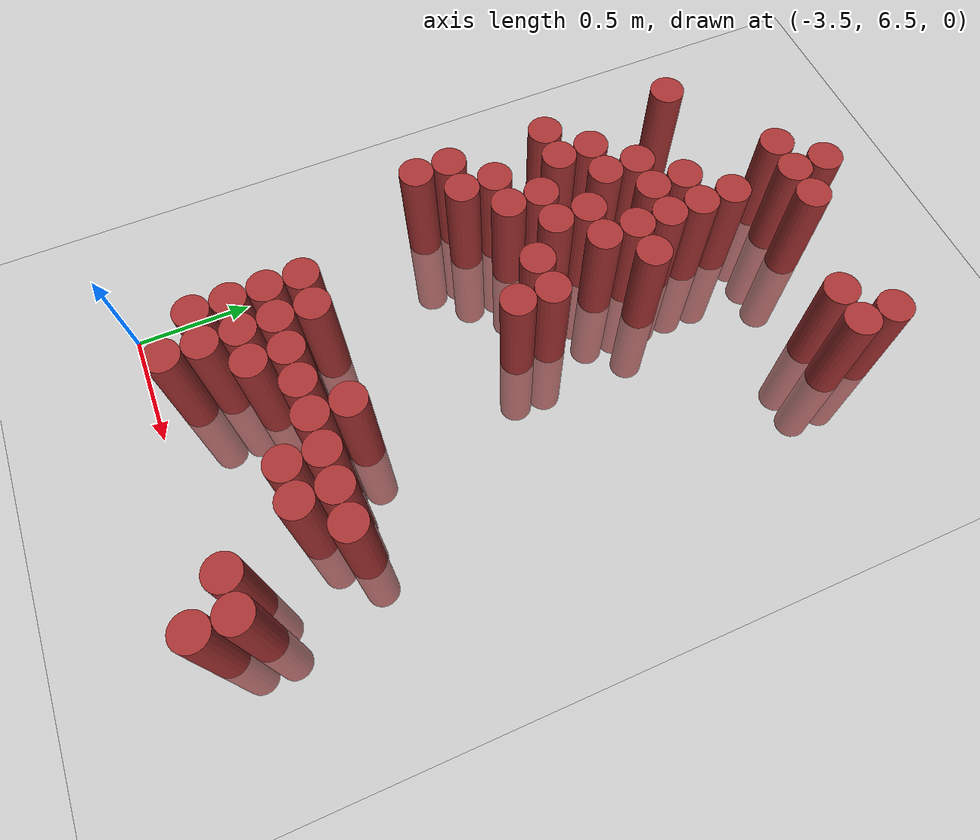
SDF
<sdf version="1.6">
 <world name="default">
  <model name="ground_plane">
   <static>1</static>
   <link name="link">
    <collision name="collision">
     <geometry><plane><normal>0 0 1</normal><size>100 100</size></plane></geometry>
     <surface><friction><ode><mu>100</mu><mu2>50</mu2></ode></friction></surface>
    </collision>
    <visual name="visual">
     <cast_shadows>0</cast_shadows>
     <geometry><plane><normal>0 0 1</normal><size>100 100</size></plane></geometry>
     <material>
      <script><uri>file://media/materials/scripts/gazebo.material</uri><name>Gazebo/Grey</name></script>
     </material>
    </visual>
   </link>
  </model>
  <model name="unit_cylinder_172">
   <static>1</static>
   <pose>-3.525000 7.875000 0.000000 0.000000 0.000000 0.000000</pose>
   <link name="link">
    <inertial>
     <mass>1</mass>
     <inertia><ixx>0.145833</ixx><ixy>0</ixy><ixz>0</ixz><iyy>0.145833</iyy><iyz>0</iyz><izz>0.125</izz></inertia>
    </inertial>
    <collision name="collision">
     <geometry><cylinder><radius>0.075000</radius><length>1</length></cylinder></geometry>
    </collision>
    <visual name="visual">
     <geometry><cylinder><radius>0.075000</radius><length>1</length></cylinder></geometry>
     <material>
      <ambient>0.648000 0.192000 0.192000 1</ambient>
      <diffuse>0.648000 0.192000 0.192000 1</diffuse>
     </material>
     <material>
      <script><name>Gazebo/Grey</name><uri>file://media/materials/scripts/gazebo.material</uri></script>
     </material>
    </visual>
   </link>
  </model>
  <model name="unit_cylinder_173">
   <static>1</static>
   <pose>-3.525000 8.025000 0.000000 0.000000 0.000000 0.000000</pose>
   <link name="link">
    <inertial>
     <mass>1</mass>
     <inertia><ixx>0.145833</ixx><ixy>0</ixy><ixz>0</ixz><iyy>0.145833</iyy><iyz>0</iyz><izz>0.125</izz></inertia>
    </inertial>
    <collision name="collision">
     <geometry><cylinder><radius>0.075000</radius><length>1</length></cylinder></geometry>
    </collision>
    <visual name="visual">
     <geometry><cylinder><radius>0.075000</radius><length>1</length></cylinder></geometry>
     <material>
      <ambient>0.648000 0.192000 0.192000 1</ambient>
      <diffuse>0.648000 0.192000 0.192000 1</diffuse>
     </material>
     <material>
      <script><name>Gazebo/Grey</name><uri>file://media/materials/scripts/gazebo.material</uri></script>
     </material>
    </visual>
   </link>
  </model>
  <model name="unit_cylinder_174">
   <static>1</static>
   <pose>-3.525000 8.475000 0.000000 0.000000 0.000000 0.000000</pose>
   <link name="link">
    <inertial>
     <mass>1</mass>
     <inertia><ixx>0.145833</ixx><ixy>0</ixy><ixz>0</ixz><iyy>0.145833</iyy><iyz>0</iyz><izz>0.125</izz></inertia>
    </inertial>
    <collision name="collision">
     <geometry><cylinder><radius>0.075000</radius><length>1</length></cylinder></geometry>
    </collision>
    <visual name="visual">
     <geometry><cylinder><radius>0.075000</radius><length>1</length></cylinder></geometry>
     <material>
      <ambient>0.648000 0.192000 0.192000 1</ambient>
      <diffuse>0.648000 0.192000 0.192000 1</diffuse>
     </material>
     <material>
      <script><name>Gazebo/Grey</name><uri>file://media/materials/scripts/gazebo.material</uri></script>
     </material>
    </visual>
   </link>
  </model>
  <model name="unit_cylinder_175">
   <static>1</static>
   <pose>-3.525000 9.075000 0.000000 0.000000 0.000000 0.000000</pose>
   <link name="link">
    <inertial>
     <mass>1</mass>
     <inertia><ixx>0.145833</ixx><ixy>0</ixy><ixz>0</ixz><iyy>0.145833</iyy><iyz>0</iyz><izz>0.125</izz></inertia>
    </inertial>
    <collision name="collision">
     <geometry><cylinder><radius>0.075000</radius><length>1</length></cylinder></geometry>
    </collision>
    <visual name="visual">
     <geometry><cylinder><radius>0.075000</radius><length>1</length></cylinder></geometry>
     <material>
      <ambient>0.648000 0.192000 0.192000 1</ambient>
      <diffuse>0.648000 0.192000 0.192000 1</diffuse>
     </material>
     <material>
      <script><name>Gazebo/Grey</name><uri>file://media/materials/scripts/gazebo.material</uri></script>
     </material>
    </visual>
   </link>
  </model>
  <model name="unit_cylinder_179">
   <static>1</static>
   <pose>-3.375000 8.025000 0.000000 0.000000 0.000000 0.000000</pose>
   <link name="link">
    <inertial>
     <mass>1</mass>
     <inertia><ixx>0.145833</ixx><ixy>0</ixy><ixz>0</ixz><iyy>0.145833</iyy><iyz>0</iyz><izz>0.125</izz></inertia>
    </inertial>
    <collision name="collision">
     <geometry><cylinder><radius>0.075000</radius><length>1</length></cylinder></geometry>
    </collision>
    <visual name="visual">
     <geometry><cylinder><radius>0.075000</radius><length>1</length></cylinder></geometry>
     <material>
      <ambient>0.648000 0.192000 0.192000 1</ambient>
      <diffuse>0.648000 0.192000 0.192000 1</diffuse>
     </material>
     <material>
      <script><name>Gazebo/Grey</name><uri>file://media/materials/scripts/gazebo.material</uri></script>
     </material>
    </visual>
   </link>
  </model>
  <model name="unit_cylinder_180">
   <static>1</static>
   <pose>-3.375000 8.175000 0.000000 0.000000 0.000000 0.000000</pose>
   <link name="link">
    <inertial>
     <mass>1</mass>
     <inertia><ixx>0.145833</ixx><ixy>0</ixy><ixz>0</ixz><iyy>0.145833</iyy><iyz>0</iyz><izz>0.125</izz></inertia>
    </inertial>
    <collision name="collision">
     <geometry><cylinder><radius>0.075000</radius><length>1</length></cylinder></geometry>
    </collision>
    <visual name="visual">
     <geometry><cylinder><radius>0.075000</radius><length>1</length></cylinder></geometry>
     <material>
      <ambient>0.648000 0.192000 0.192000 1</ambient>
      <diffuse>0.648000 0.192000 0.192000 1</diffuse>
     </material>
     <material>
      <script><name>Gazebo/Grey</name><uri>file://media/materials/scripts/gazebo.material</uri></script>
     </material>
    </visual>
   </link>
  </model>
  <model name="unit_cylinder_181">
   <static>1</static>
   <pose>-3.375000 8.475000 0.000000 0.000000 0.000000 0.000000</pose>
   <link name="link">
    <inertial>
     <mass>1</mass>
     <inertia><ixx>0.145833</ixx><ixy>0</ixy><ixz>0</ixz><iyy>0.145833</iyy><iyz>0</iyz><izz>0.125</izz></inertia>
    </inertial>
    <collision name="collision">
     <geometry><cylinder><radius>0.075000</radius><length>1</length></cylinder></geometry>
    </collision>
    <visual name="visual">
     <geometry><cylinder><radius>0.075000</radius><length>1</length></cylinder></geometry>
     <material>
      <ambient>0.648000 0.192000 0.192000 1</ambient>
      <diffuse>0.648000 0.192000 0.192000 1</diffuse>
     </material>
     <material>
      <script><name>Gazebo/Grey</name><uri>file://media/materials/scripts/gazebo.material</uri></script>
     </material>
    </visual>
   </link>
  </model>
  <model name="unit_cylinder_182">
   <static>1</static>
   <pose>-3.375000 8.625000 0.000000 0.000000 0.000000 0.000000</pose>
   <link name="link">
    <inertial>
     <mass>1</mass>
     <inertia><ixx>0.145833</ixx><ixy>0</ixy><ixz>0</ixz><iyy>0.145833</iyy><iyz>0</iyz><izz>0.125</izz></inertia>
    </inertial>
    <collision name="collision">
     <geometry><cylinder><radius>0.075000</radius><length>1</length></cylinder></geometry>
    </collision>
    <visual name="visual">
     <geometry><cylinder><radius>0.075000</radius><length>1</length></cylinder></geometry>
     <material>
      <ambient>0.648000 0.192000 0.192000 1</ambient>
      <diffuse>0.648000 0.192000 0.192000 1</diffuse>
     </material>
     <material>
      <script><name>Gazebo/Grey</name><uri>file://media/materials/scripts/gazebo.material</uri></script>
     </material>
    </visual>
   </link>
  </model>
  <model name="unit_cylinder_186">
   <static>1</static>
   <pose>-3.225000 6.825000 0.000000 0.000000 0.000000 0.000000</pose>
   <link name="link">
    <inertial>
     <mass>1</mass>
     <inertia><ixx>0.145833</ixx><ixy>0</ixy><ixz>0</ixz><iyy>0.145833</iyy><iyz>0</iyz><izz>0.125</izz></inertia>
    </inertial>
    <collision name="collision">
     <geometry><cylinder><radius>0.075000</radius><length>1</length></cylinder></geometry>
    </collision>
    <visual name="visual">
     <geometry><cylinder><radius>0.075000</radius><length>1</length></cylinder></geometry>
     <material>
      <ambient>0.648000 0.192000 0.192000 1</ambient>
      <diffuse>0.648000 0.192000 0.192000 1</diffuse>
     </material>
     <material>
      <script><name>Gazebo/Grey</name><uri>file://media/materials/scripts/gazebo.material</uri></script>
     </material>
    </visual>
   </link>
  </model>
  <model name="unit_cylinder_187">
   <static>1</static>
   <pose>-3.225000 6.975000 0.000000 0.000000 0.000000 0.000000</pose>
   <link name="link">
    <inertial>
     <mass>1</mass>
     <inertia><ixx>0.145833</ixx><ixy>0</ixy><ixz>0</ixz><iyy>0.145833</iyy><iyz>0</iyz><izz>0.125</izz></inertia>
    </inertial>
    <collision name="collision">
     <geometry><cylinder><radius>0.075000</radius><length>1</length></cylinder></geometry>
    </collision>
    <visual name="visual">
     <geometry><cylinder><radius>0.075000</radius><length>1</length></cylinder></geometry>
     <material>
      <ambient>0.648000 0.192000 0.192000 1</ambient>
      <diffuse>0.648000 0.192000 0.192000 1</diffuse>
     </material>
     <material>
      <script><name>Gazebo/Grey</name><uri>file://media/materials/scripts/gazebo.material</uri></script>
     </material>
    </visual>
   </link>
  </model>
  <model name="unit_cylinder_188">
   <static>1</static>
   <pose>-3.225000 7.125000 0.000000 0.000000 0.000000 0.000000</pose>
   <link name="link">
    <inertial>
     <mass>1</mass>
     <inertia><ixx>0.145833</ixx><ixy>0</ixy><ixz>0</ixz><iyy>0.145833</iyy><iyz>0</iyz><izz>0.125</izz></inertia>
    </inertial>
    <collision name="collision">
     <geometry><cylinder><radius>0.075000</radius><length>1</length></cylinder></geometry>
    </collision>
    <visual name="visual">
     <geometry><cylinder><radius>0.075000</radius><length>1</length></cylinder></geometry>
     <material>
      <ambient>0.648000 0.192000 0.192000 1</ambient>
      <diffuse>0.648000 0.192000 0.192000 1</diffuse>
     </material>
     <material>
      <script><name>Gazebo/Grey</name><uri>file://media/materials/scripts/gazebo.material</uri></script>
     </material>
    </visual>
   </link>
  </model>
  <model name="unit_cylinder_189">
   <static>1</static>
   <pose>-3.225000 7.275000 0.000000 0.000000 0.000000 0.000000</pose>
   <link name="link">
    <inertial>
     <mass>1</mass>
     <inertia><ixx>0.145833</ixx><ixy>0</ixy><ixz>0</ixz><iyy>0.145833</iyy><iyz>0</iyz><izz>0.125</izz></inertia>
    </inertial>
    <collision name="collision">
     <geometry><cylinder><radius>0.075000</radius><length>1</length></cylinder></geometry>
    </collision>
    <visual name="visual">
     <geometry><cylinder><radius>0.075000</radius><length>1</length></cylinder></geometry>
     <material>
      <ambient>0.648000 0.192000 0.192000 1</ambient>
      <diffuse>0.648000 0.192000 0.192000 1</diffuse>
     </material>
     <material>
      <script><name>Gazebo/Grey</name><uri>file://media/materials/scripts/gazebo.material</uri></script>
     </material>
    </visual>
   </link>
  </model>
  <model name="unit_cylinder_190">
   <static>1</static>
   <pose>-3.225000 8.175000 0.000000 0.000000 0.000000 0.000000</pose>
   <link name="link">
    <inertial>
     <mass>1</mass>
     <inertia><ixx>0.145833</ixx><ixy>0</ixy><ixz>0</ixz><iyy>0.145833</iyy><iyz>0</iyz><izz>0.125</izz></inertia>
    </inertial>
    <collision name="collision">
     <geometry><cylinder><radius>0.075000</radius><length>1</length></cylinder></geometry>
    </collision>
    <visual name="visual">
     <geometry><cylinder><radius>0.075000</radius><length>1</length></cylinder></geometry>
     <material>
      <ambient>0.648000 0.192000 0.192000 1</ambient>
      <diffuse>0.648000 0.192000 0.192000 1</diffuse>
     </material>
     <material>
      <script><name>Gazebo/Grey</name><uri>file://media/materials/scripts/gazebo.material</uri></script>
     </material>
    </visual>
   </link>
  </model>
  <model name="unit_cylinder_191">
   <static>1</static>
   <pose>-3.225000 8.325000 0.000000 0.000000 0.000000 0.000000</pose>
   <link name="link">
    <inertial>
     <mass>1</mass>
     <inertia><ixx>0.145833</ixx><ixy>0</ixy><ixz>0</ixz><iyy>0.145833</iyy><iyz>0</iyz><izz>0.125</izz></inertia>
    </inertial>
    <collision name="collision">
     <geometry><cylinder><radius>0.075000</radius><length>1</length></cylinder></geometry>
    </collision>
    <visual name="visual">
     <geometry><cylinder><radius>0.075000</radius><length>1</length></cylinder></geometry>
     <material>
      <ambient>0.648000 0.192000 0.192000 1</ambient>
      <diffuse>0.648000 0.192000 0.192000 1</diffuse>
     </material>
     <material>
      <script><name>Gazebo/Grey</name><uri>file://media/materials/scripts/gazebo.material</uri></script>
     </material>
    </visual>
   </link>
  </model>
  <model name="unit_cylinder_192">
   <static>1</static>
   <pose>-3.225000 8.625000 0.000000 0.000000 0.000000 0.000000</pose>
   <link name="link">
    <inertial>
     <mass>1</mass>
     <inertia><ixx>0.145833</ixx><ixy>0</ixy><ixz>0</ixz><iyy>0.145833</iyy><iyz>0</iyz><izz>0.125</izz></inertia>
    </inertial>
    <collision name="collision">
     <geometry><cylinder><radius>0.075000</radius><length>1</length></cylinder></geometry>
    </collision>
    <visual name="visual">
     <geometry><cylinder><radius>0.075000</radius><length>1</length></cylinder></geometry>
     <material>
      <ambient>0.648000 0.192000 0.192000 1</ambient>
      <diffuse>0.648000 0.192000 0.192000 1</diffuse>
     </material>
     <material>
      <script><name>Gazebo/Grey</name><uri>file://media/materials/scripts/gazebo.material</uri></script>
     </material>
    </visual>
   </link>
  </model>
  <model name="unit_cylinder_193">
   <static>1</static>
   <pose>-3.225000 8.775000 0.000000 0.000000 0.000000 0.000000</pose>
   <link name="link">
    <inertial>
     <mass>1</mass>
     <inertia><ixx>0.145833</ixx><ixy>0</ixy><ixz>0</ixz><iyy>0.145833</iyy><iyz>0</iyz><izz>0.125</izz></inertia>
    </inertial>
    <collision name="collision">
     <geometry><cylinder><radius>0.075000</radius><length>1</length></cylinder></geometry>
    </collision>
    <visual name="visual">
     <geometry><cylinder><radius>0.075000</radius><length>1</length></cylinder></geometry>
     <material>
      <ambient>0.648000 0.192000 0.192000 1</ambient>
      <diffuse>0.648000 0.192000 0.192000 1</diffuse>
     </material>
     <material>
      <script><name>Gazebo/Grey</name><uri>file://media/materials/scripts/gazebo.material</uri></script>
     </material>
    </visual>
   </link>
  </model>
  <model name="unit_cylinder_198">
   <static>1</static>
   <pose>-3.075000 6.675000 0.000000 0.000000 0.000000 0.000000</pose>
   <link name="link">
    <inertial>
     <mass>1</mass>
     <inertia><ixx>0.145833</ixx><ixy>0</ixy><ixz>0</ixz><iyy>0.145833</iyy><iyz>0</iyz><izz>0.125</izz></inertia>
    </inertial>
    <collision name="collision">
     <geometry><cylinder><radius>0.075000</radius><length>1</length></cylinder></geometry>
    </collision>
    <visual name="visual">
     <geometry><cylinder><radius>0.075000</radius><length>1</length></cylinder></geometry>
     <material>
      <ambient>0.648000 0.192000 0.192000 1</ambient>
      <diffuse>0.648000 0.192000 0.192000 1</diffuse>
     </material>
     <material>
      <script><name>Gazebo/Grey</name><uri>file://media/materials/scripts/gazebo.material</uri></script>
     </material>
    </visual>
   </link>
  </model>
  <model name="unit_cylinder_199">
   <static>1</static>
   <pose>-3.075000 6.825000 0.000000 0.000000 0.000000 0.000000</pose>
   <link name="link">
    <inertial>
     <mass>1</mass>
     <inertia><ixx>0.145833</ixx><ixy>0</ixy><ixz>0</ixz><iyy>0.145833</iyy><iyz>0</iyz><izz>0.125</izz></inertia>
    </inertial>
    <collision name="collision">
     <geometry><cylinder><radius>0.075000</radius><length>1</length></cylinder></geometry>
    </collision>
    <visual name="visual">
     <geometry><cylinder><radius>0.075000</radius><length>1</length></cylinder></geometry>
     <material>
      <ambient>0.648000 0.192000 0.192000 1</ambient>
      <diffuse>0.648000 0.192000 0.192000 1</diffuse>
     </material>
     <material>
      <script><name>Gazebo/Grey</name><uri>file://media/materials/scripts/gazebo.material</uri></script>
     </material>
    </visual>
   </link>
  </model>
  <model name="unit_cylinder_200">
   <static>1</static>
   <pose>-3.075000 6.975000 0.000000 0.000000 0.000000 0.000000</pose>
   <link name="link">
    <inertial>
     <mass>1</mass>
     <inertia><ixx>0.145833</ixx><ixy>0</ixy><ixz>0</ixz><iyy>0.145833</iyy><iyz>0</iyz><izz>0.125</izz></inertia>
    </inertial>
    <collision name="collision">
     <geometry><cylinder><radius>0.075000</radius><length>1</length></cylinder></geometry>
    </collision>
    <visual name="visual">
     <geometry><cylinder><radius>0.075000</radius><length>1</length></cylinder></geometry>
     <material>
      <ambient>0.648000 0.192000 0.192000 1</ambient>
      <diffuse>0.648000 0.192000 0.192000 1</diffuse>
     </material>
     <material>
      <script><name>Gazebo/Grey</name><uri>file://media/materials/scripts/gazebo.material</uri></script>
     </material>
    </visual>
   </link>
  </model>
  <model name="unit_cylinder_201">
   <static>1</static>
   <pose>-3.075000 7.125000 0.000000 0.000000 0.000000 0.000000</pose>
   <link name="link">
    <inertial>
     <mass>1</mass>
     <inertia><ixx>0.145833</ixx><ixy>0</ixy><ixz>0</ixz><iyy>0.145833</iyy><iyz>0</iyz><izz>0.125</izz></inertia>
    </inertial>
    <collision name="collision">
     <geometry><cylinder><radius>0.075000</radius><length>1</length></cylinder></geometry>
    </collision>
    <visual name="visual">
     <geometry><cylinder><radius>0.075000</radius><length>1</length></cylinder></geometry>
     <material>
      <ambient>0.648000 0.192000 0.192000 1</ambient>
      <diffuse>0.648000 0.192000 0.192000 1</diffuse>
     </material>
     <material>
      <script><name>Gazebo/Grey</name><uri>file://media/materials/scripts/gazebo.material</uri></script>
     </material>
    </visual>
   </link>
  </model>
  <model name="unit_cylinder_202">
   <static>1</static>
   <pose>-3.075000 7.275000 0.000000 0.000000 0.000000 0.000000</pose>
   <link name="link">
    <inertial>
     <mass>1</mass>
     <inertia><ixx>0.145833</ixx><ixy>0</ixy><ixz>0</ixz><iyy>0.145833</iyy><iyz>0</iyz><izz>0.125</izz></inertia>
    </inertial>
    <collision name="collision">
     <geometry><cylinder><radius>0.075000</radius><length>1</length></cylinder></geometry>
    </collision>
    <visual name="visual">
     <geometry><cylinder><radius>0.075000</radius><length>1</length></cylinder></geometry>
     <material>
      <ambient>0.648000 0.192000 0.192000 1</ambient>
      <diffuse>0.648000 0.192000 0.192000 1</diffuse>
     </material>
     <material>
      <script><name>Gazebo/Grey</name><uri>file://media/materials/scripts/gazebo.material</uri></script>
     </material>
    </visual>
   </link>
  </model>
  <model name="unit_cylinder_203">
   <static>1</static>
   <pose>-3.075000 8.325000 0.000000 0.000000 0.000000 0.000000</pose>
   <link name="link">
    <inertial>
     <mass>1</mass>
     <inertia><ixx>0.145833</ixx><ixy>0</ixy><ixz>0</ixz><iyy>0.145833</iyy><iyz>0</iyz><izz>0.125</izz></inertia>
    </inertial>
    <collision name="collision">
     <geometry><cylinder><radius>0.075000</radius><length>1</length></cylinder></geometry>
    </collision>
    <visual name="visual">
     <geometry><cylinder><radius>0.075000</radius><length>1</length></cylinder></geometry>
     <material>
      <ambient>0.648000 0.192000 0.192000 1</ambient>
      <diffuse>0.648000 0.192000 0.192000 1</diffuse>
     </material>
     <material>
      <script><name>Gazebo/Grey</name><uri>file://media/materials/scripts/gazebo.material</uri></script>
     </material>
    </visual>
   </link>
  </model>
  <model name="unit_cylinder_204">
   <static>1</static>
   <pose>-3.075000 8.475000 0.000000 0.000000 0.000000 0.000000</pose>
   <link name="link">
    <inertial>
     <mass>1</mass>
     <inertia><ixx>0.145833</ixx><ixy>0</ixy><ixz>0</ixz><iyy>0.145833</iyy><iyz>0</iyz><izz>0.125</izz></inertia>
    </inertial>
    <collision name="collision">
     <geometry><cylinder><radius>0.075000</radius><length>1</length></cylinder></geometry>
    </collision>
    <visual name="visual">
     <geometry><cylinder><radius>0.075000</radius><length>1</length></cylinder></geometry>
     <material>
      <ambient>0.648000 0.192000 0.192000 1</ambient>
      <diffuse>0.648000 0.192000 0.192000 1</diffuse>
     </material>
     <material>
      <script><name>Gazebo/Grey</name><uri>file://media/materials/scripts/gazebo.material</uri></script>
     </material>
    </visual>
   </link>
  </model>
  <model name="unit_cylinder_205">
   <static>1</static>
   <pose>-3.075000 8.775000 0.000000 0.000000 0.000000 0.000000</pose>
   <link name="link">
    <inertial>
     <mass>1</mass>
     <inertia><ixx>0.145833</ixx><ixy>0</ixy><ixz>0</ixz><iyy>0.145833</iyy><iyz>0</iyz><izz>0.125</izz></inertia>
    </inertial>
    <collision name="collision">
     <geometry><cylinder><radius>0.075000</radius><length>1</length></cylinder></geometry>
    </collision>
    <visual name="visual">
     <geometry><cylinder><radius>0.075000</radius><length>1</length></cylinder></geometry>
     <material>
      <ambient>0.648000 0.192000 0.192000 1</ambient>
      <diffuse>0.648000 0.192000 0.192000 1</diffuse>
     </material>
     <material>
      <script><name>Gazebo/Grey</name><uri>file://media/materials/scripts/gazebo.material</uri></script>
     </material>
    </visual>
   </link>
  </model>
  <model name="unit_cylinder_206">
   <static>1</static>
   <pose>-3.075000 8.925000 0.000000 0.000000 0.000000 0.000000</pose>
   <link name="link">
    <inertial>
     <mass>1</mass>
     <inertia><ixx>0.145833</ixx><ixy>0</ixy><ixz>0</ixz><iyy>0.145833</iyy><iyz>0</iyz><izz>0.125</izz></inertia>
    </inertial>
    <collision name="collision">
     <geometry><cylinder><radius>0.075000</radius><length>1</length></cylinder></geometry>
    </collision>
    <visual name="visual">
     <geometry><cylinder><radius>0.075000</radius><length>1</length></cylinder></geometry>
     <material>
      <ambient>0.648000 0.192000 0.192000 1</ambient>
      <diffuse>0.648000 0.192000 0.192000 1</diffuse>
     </material>
     <material>
      <script><name>Gazebo/Grey</name><uri>file://media/materials/scripts/gazebo.material</uri></script>
     </material>
    </visual>
   </link>
  </model>
  <model name="unit_cylinder_207">
   <static>1</static>
   <pose>-3.075000 9.375000 0.000000 0.000000 0.000000 0.000000</pose>
   <link name="link">
    <inertial>
     <mass>1</mass>
     <inertia><ixx>0.145833</ixx><ixy>0</ixy><ixz>0</ixz><iyy>0.145833</iyy><iyz>0</iyz><izz>0.125</izz></inertia>
    </inertial>
    <collision name="collision">
     <geometry><cylinder><radius>0.075000</radius><length>1</length></cylinder></geometry>
    </collision>
    <visual name="visual">
     <geometry><cylinder><radius>0.075000</radius><length>1</length></cylinder></geometry>
     <material>
      <ambient>0.648000 0.192000 0.192000 1</ambient>
      <diffuse>0.648000 0.192000 0.192000 1</diffuse>
     </material>
     <material>
      <script><name>Gazebo/Grey</name><uri>file://media/materials/scripts/gazebo.material</uri></script>
     </material>
    </visual>
   </link>
  </model>
  <model name="unit_cylinder_211">
   <static>1</static>
   <pose>-2.925000 6.975000 0.000000 0.000000 0.000000 0.000000</pose>
   <link name="link">
    <inertial>
     <mass>1</mass>
     <inertia><ixx>0.145833</ixx><ixy>0</ixy><ixz>0</ixz><iyy>0.145833</iyy><iyz>0</iyz><izz>0.125</izz></inertia>
    </inertial>
    <collision name="collision">
     <geometry><cylinder><radius>0.075000</radius><length>1</length></cylinder></geometry>
    </collision>
    <visual name="visual">
     <geometry><cylinder><radius>0.075000</radius><length>1</length></cylinder></geometry>
     <material>
      <ambient>0.648000 0.192000 0.192000 1</ambient>
      <diffuse>0.648000 0.192000 0.192000 1</diffuse>
     </material>
     <material>
      <script><name>Gazebo/Grey</name><uri>file://media/materials/scripts/gazebo.material</uri></script>
     </material>
    </visual>
   </link>
  </model>
  <model name="unit_cylinder_212">
   <static>1</static>
   <pose>-2.925000 7.125000 0.000000 0.000000 0.000000 0.000000</pose>
   <link name="link">
    <inertial>
     <mass>1</mass>
     <inertia><ixx>0.145833</ixx><ixy>0</ixy><ixz>0</ixz><iyy>0.145833</iyy><iyz>0</iyz><izz>0.125</izz></inertia>
    </inertial>
    <collision name="collision">
     <geometry><cylinder><radius>0.075000</radius><length>1</length></cylinder></geometry>
    </collision>
    <visual name="visual">
     <geometry><cylinder><radius>0.075000</radius><length>1</length></cylinder></geometry>
     <material>
      <ambient>0.648000 0.192000 0.192000 1</ambient>
      <diffuse>0.648000 0.192000 0.192000 1</diffuse>
     </material>
     <material>
      <script><name>Gazebo/Grey</name><uri>file://media/materials/scripts/gazebo.material</uri></script>
     </material>
    </visual>
   </link>
  </model>
  <model name="unit_cylinder_213">
   <static>1</static>
   <pose>-2.925000 8.175000 0.000000 0.000000 0.000000 0.000000</pose>
   <link name="link">
    <inertial>
     <mass>1</mass>
     <inertia><ixx>0.145833</ixx><ixy>0</ixy><ixz>0</ixz><iyy>0.145833</iyy><iyz>0</iyz><izz>0.125</izz></inertia>
    </inertial>
    <collision name="collision">
     <geometry><cylinder><radius>0.075000</radius><length>1</length></cylinder></geometry>
    </collision>
    <visual name="visual">
     <geometry><cylinder><radius>0.075000</radius><length>1</length></cylinder></geometry>
     <material>
      <ambient>0.648000 0.192000 0.192000 1</ambient>
      <diffuse>0.648000 0.192000 0.192000 1</diffuse>
     </material>
     <material>
      <script><name>Gazebo/Grey</name><uri>file://media/materials/scripts/gazebo.material</uri></script>
     </material>
    </visual>
   </link>
  </model>
  <model name="unit_cylinder_214">
   <static>1</static>
   <pose>-2.925000 8.475000 0.000000 0.000000 0.000000 0.000000</pose>
   <link name="link">
    <inertial>
     <mass>1</mass>
     <inertia><ixx>0.145833</ixx><ixy>0</ixy><ixz>0</ixz><iyy>0.145833</iyy><iyz>0</iyz><izz>0.125</izz></inertia>
    </inertial>
    <collision name="collision">
     <geometry><cylinder><radius>0.075000</radius><length>1</length></cylinder></geometry>
    </collision>
    <visual name="visual">
     <geometry><cylinder><radius>0.075000</radius><length>1</length></cylinder></geometry>
     <material>
      <ambient>0.648000 0.192000 0.192000 1</ambient>
      <diffuse>0.648000 0.192000 0.192000 1</diffuse>
     </material>
     <material>
      <script><name>Gazebo/Grey</name><uri>file://media/materials/scripts/gazebo.material</uri></script>
     </material>
    </visual>
   </link>
  </model>
  <model name="unit_cylinder_215">
   <static>1</static>
   <pose>-2.925000 8.625000 0.000000 0.000000 0.000000 0.000000</pose>
   <link name="link">
    <inertial>
     <mass>1</mass>
     <inertia><ixx>0.145833</ixx><ixy>0</ixy><ixz>0</ixz><iyy>0.145833</iyy><iyz>0</iyz><izz>0.125</izz></inertia>
    </inertial>
    <collision name="collision">
     <geometry><cylinder><radius>0.075000</radius><length>1</length></cylinder></geometry>
    </collision>
    <visual name="visual">
     <geometry><cylinder><radius>0.075000</radius><length>1</length></cylinder></geometry>
     <material>
      <ambient>0.648000 0.192000 0.192000 1</ambient>
      <diffuse>0.648000 0.192000 0.192000 1</diffuse>
     </material>
     <material>
      <script><name>Gazebo/Grey</name><uri>file://media/materials/scripts/gazebo.material</uri></script>
     </material>
    </visual>
   </link>
  </model>
  <model name="unit_cylinder_216">
   <static>1</static>
   <pose>-2.925000 8.775000 0.000000 0.000000 0.000000 0.000000</pose>
   <link name="link">
    <inertial>
     <mass>1</mass>
     <inertia><ixx>0.145833</ixx><ixy>0</ixy><ixz>0</ixz><iyy>0.145833</iyy><iyz>0</iyz><izz>0.125</izz></inertia>
    </inertial>
    <collision name="collision">
     <geometry><cylinder><radius>0.075000</radius><length>1</length></cylinder></geometry>
    </collision>
    <visual name="visual">
     <geometry><cylinder><radius>0.075000</radius><length>1</length></cylinder></geometry>
     <material>
      <ambient>0.648000 0.192000 0.192000 1</ambient>
      <diffuse>0.648000 0.192000 0.192000 1</diffuse>
     </material>
     <material>
      <script><name>Gazebo/Grey</name><uri>file://media/materials/scripts/gazebo.material</uri></script>
     </material>
    </visual>
   </link>
  </model>
  <model name="unit_cylinder_217">
   <static>1</static>
   <pose>-2.925000 8.925000 0.000000 0.000000 0.000000 0.000000</pose>
   <link name="link">
    <inertial>
     <mass>1</mass>
     <inertia><ixx>0.145833</ixx><ixy>0</ixy><ixz>0</ixz><iyy>0.145833</iyy><iyz>0</iyz><izz>0.125</izz></inertia>
    </inertial>
    <collision name="collision">
     <geometry><cylinder><radius>0.075000</radius><length>1</length></cylinder></geometry>
    </collision>
    <visual name="visual">
     <geometry><cylinder><radius>0.075000</radius><length>1</length></cylinder></geometry>
     <material>
      <ambient>0.648000 0.192000 0.192000 1</ambient>
      <diffuse>0.648000 0.192000 0.192000 1</diffuse>
     </material>
     <material>
      <script><name>Gazebo/Grey</name><uri>file://media/materials/scripts/gazebo.material</uri></script>
     </material>
    </visual>
   </link>
  </model>
  <model name="unit_cylinder_218">
   <static>1</static>
   <pose>-2.925000 9.075000 0.000000 0.000000 0.000000 0.000000</pose>
   <link name="link">
    <inertial>
     <mass>1</mass>
     <inertia><ixx>0.145833</ixx><ixy>0</ixy><ixz>0</ixz><iyy>0.145833</iyy><iyz>0</iyz><izz>0.125</izz></inertia>
    </inertial>
    <collision name="collision">
     <geometry><cylinder><radius>0.075000</radius><length>1</length></cylinder></geometry>
    </collision>
    <visual name="visual">
     <geometry><cylinder><radius>0.075000</radius><length>1</length></cylinder></geometry>
     <material>
      <ambient>0.648000 0.192000 0.192000 1</ambient>
      <diffuse>0.648000 0.192000 0.192000 1</diffuse>
     </material>
     <material>
      <script><name>Gazebo/Grey</name><uri>file://media/materials/scripts/gazebo.material</uri></script>
     </material>
    </visual>
   </link>
  </model>
  <model name="unit_cylinder_219">
   <static>1</static>
   <pose>-2.925000 9.375000 0.000000 0.000000 0.000000 0.000000</pose>
   <link name="link">
    <inertial>
     <mass>1</mass>
     <inertia><ixx>0.145833</ixx><ixy>0</ixy><ixz>0</ixz><iyy>0.145833</iyy><iyz>0</iyz><izz>0.125</izz></inertia>
    </inertial>
    <collision name="collision">
     <geometry><cylinder><radius>0.075000</radius><length>1</length></cylinder></geometry>
    </collision>
    <visual name="visual">
     <geometry><cylinder><radius>0.075000</radius><length>1</length></cylinder></geometry>
     <material>
      <ambient>0.648000 0.192000 0.192000 1</ambient>
      <diffuse>0.648000 0.192000 0.192000 1</diffuse>
     </material>
     <material>
      <script><name>Gazebo/Grey</name><uri>file://media/materials/scripts/gazebo.material</uri></script>
     </material>
    </visual>
   </link>
  </model>
  <model name="unit_cylinder_220">
   <static>1</static>
   <pose>-2.925000 9.525000 0.000000 0.000000 0.000000 0.000000</pose>
   <link name="link">
    <inertial>
     <mass>1</mass>
     <inertia><ixx>0.145833</ixx><ixy>0</ixy><ixz>0</ixz><iyy>0.145833</iyy><iyz>0</iyz><izz>0.125</izz></inertia>
    </inertial>
    <collision name="collision">
     <geometry><cylinder><radius>0.075000</radius><length>1</length></cylinder></geometry>
    </collision>
    <visual name="visual">
     <geometry><cylinder><radius>0.075000</radius><length>1</length></cylinder></geometry>
     <material>
      <ambient>0.648000 0.192000 0.192000 1</ambient>
      <diffuse>0.648000 0.192000 0.192000 1</diffuse>
     </material>
     <material>
      <script><name>Gazebo/Grey</name><uri>file://media/materials/scripts/gazebo.material</uri></script>
     </material>
    </visual>
   </link>
  </model>
  <model name="unit_cylinder_224">
   <static>1</static>
   <pose>-2.775000 7.125000 0.000000 0.000000 0.000000 0.000000</pose>
   <link name="link">
    <inertial>
     <mass>1</mass>
     <inertia><ixx>0.145833</ixx><ixy>0</ixy><ixz>0</ixz><iyy>0.145833</iyy><iyz>0</iyz><izz>0.125</izz></inertia>
    </inertial>
    <collision name="collision">
     <geometry><cylinder><radius>0.075000</radius><length>1</length></cylinder></geometry>
    </collision>
    <visual name="visual">
     <geometry><cylinder><radius>0.075000</radius><length>1</length></cylinder></geometry>
     <material>
      <ambient>0.648000 0.192000 0.192000 1</ambient>
      <diffuse>0.648000 0.192000 0.192000 1</diffuse>
     </material>
     <material>
      <script><name>Gazebo/Grey</name><uri>file://media/materials/scripts/gazebo.material</uri></script>
     </material>
    </visual>
   </link>
  </model>
  <model name="unit_cylinder_225">
   <static>1</static>
   <pose>-2.775000 8.025000 0.000000 0.000000 0.000000 0.000000</pose>
   <link name="link">
    <inertial>
     <mass>1</mass>
     <inertia><ixx>0.145833</ixx><ixy>0</ixy><ixz>0</ixz><iyy>0.145833</iyy><iyz>0</iyz><izz>0.125</izz></inertia>
    </inertial>
    <collision name="collision">
     <geometry><cylinder><radius>0.075000</radius><length>1</length></cylinder></geometry>
    </collision>
    <visual name="visual">
     <geometry><cylinder><radius>0.075000</radius><length>1</length></cylinder></geometry>
     <material>
      <ambient>0.648000 0.192000 0.192000 1</ambient>
      <diffuse>0.648000 0.192000 0.192000 1</diffuse>
     </material>
     <material>
      <script><name>Gazebo/Grey</name><uri>file://media/materials/scripts/gazebo.material</uri></script>
     </material>
    </visual>
   </link>
  </model>
  <model name="unit_cylinder_226">
   <static>1</static>
   <pose>-2.775000 8.175000 0.000000 0.000000 0.000000 0.000000</pose>
   <link name="link">
    <inertial>
     <mass>1</mass>
     <inertia><ixx>0.145833</ixx><ixy>0</ixy><ixz>0</ixz><iyy>0.145833</iyy><iyz>0</iyz><izz>0.125</izz></inertia>
    </inertial>
    <collision name="collision">
     <geometry><cylinder><radius>0.075000</radius><length>1</length></cylinder></geometry>
    </collision>
    <visual name="visual">
     <geometry><cylinder><radius>0.075000</radius><length>1</length></cylinder></geometry>
     <material>
      <ambient>0.648000 0.192000 0.192000 1</ambient>
      <diffuse>0.648000 0.192000 0.192000 1</diffuse>
     </material>
     <material>
      <script><name>Gazebo/Grey</name><uri>file://media/materials/scripts/gazebo.material</uri></script>
     </material>
    </visual>
   </link>
  </model>
  <model name="unit_cylinder_227">
   <static>1</static>
   <pose>-2.775000 8.625000 0.000000 0.000000 0.000000 0.000000</pose>
   <link name="link">
    <inertial>
     <mass>1</mass>
     <inertia><ixx>0.145833</ixx><ixy>0</ixy><ixz>0</ixz><iyy>0.145833</iyy><iyz>0</iyz><izz>0.125</izz></inertia>
    </inertial>
    <collision name="collision">
     <geometry><cylinder><radius>0.075000</radius><length>1</length></cylinder></geometry>
    </collision>
    <visual name="visual">
     <geometry><cylinder><radius>0.075000</radius><length>1</length></cylinder></geometry>
     <material>
      <ambient>0.648000 0.192000 0.192000 1</ambient>
      <diffuse>0.648000 0.192000 0.192000 1</diffuse>
     </material>
     <material>
      <script><name>Gazebo/Grey</name><uri>file://media/materials/scripts/gazebo.material</uri></script>
     </material>
    </visual>
   </link>
  </model>
  <model name="unit_cylinder_228">
   <static>1</static>
   <pose>-2.775000 9.375000 0.000000 0.000000 0.000000 0.000000</pose>
   <link name="link">
    <inertial>
     <mass>1</mass>
     <inertia><ixx>0.145833</ixx><ixy>0</ixy><ixz>0</ixz><iyy>0.145833</iyy><iyz>0</iyz><izz>0.125</izz></inertia>
    </inertial>
    <collision name="collision">
     <geometry><cylinder><radius>0.075000</radius><length>1</length></cylinder></geometry>
    </collision>
    <visual name="visual">
     <geometry><cylinder><radius>0.075000</radius><length>1</length></cylinder></geometry>
     <material>
      <ambient>0.648000 0.192000 0.192000 1</ambient>
      <diffuse>0.648000 0.192000 0.192000 1</diffuse>
     </material>
     <material>
      <script><name>Gazebo/Grey</name><uri>file://media/materials/scripts/gazebo.material</uri></script>
     </material>
    </visual>
   </link>
  </model>
  <model name="unit_cylinder_229">
   <static>1</static>
   <pose>-2.625000 7.125000 0.000000 0.000000 0.000000 0.000000</pose>
   <link name="link">
    <inertial>
     <mass>1</mass>
     <inertia><ixx>0.145833</ixx><ixy>0</ixy><ixz>0</ixz><iyy>0.145833</iyy><iyz>0</iyz><izz>0.125</izz></inertia>
    </inertial>
    <collision name="collision">
     <geometry><cylinder><radius>0.075000</radius><length>1</length></cylinder></geometry>
    </collision>
    <visual name="visual">
     <geometry><cylinder><radius>0.075000</radius><length>1</length></cylinder></geometry>
     <material>
      <ambient>0.648000 0.192000 0.192000 1</ambient>
      <diffuse>0.648000 0.192000 0.192000 1</diffuse>
     </material>
     <material>
      <script><name>Gazebo/Grey</name><uri>file://media/materials/scripts/gazebo.material</uri></script>
     </material>
    </visual>
   </link>
  </model>
  <model name="unit_cylinder_230">
   <static>1</static>
   <pose>-2.625000 7.275000 0.000000 0.000000 0.000000 0.000000</pose>
   <link name="link">
    <inertial>
     <mass>1</mass>
     <inertia><ixx>0.145833</ixx><ixy>0</ixy><ixz>0</ixz><iyy>0.145833</iyy><iyz>0</iyz><izz>0.125</izz></inertia>
    </inertial>
    <collision name="collision">
     <geometry><cylinder><radius>0.075000</radius><length>1</length></cylinder></geometry>
    </collision>
    <visual name="visual">
     <geometry><cylinder><radius>0.075000</radius><length>1</length></cylinder></geometry>
     <material>
      <ambient>0.648000 0.192000 0.192000 1</ambient>
      <diffuse>0.648000 0.192000 0.192000 1</diffuse>
     </material>
     <material>
      <script><name>Gazebo/Grey</name><uri>file://media/materials/scripts/gazebo.material</uri></script>
     </material>
    </visual>
   </link>
  </model>
  <model name="unit_cylinder_233">
   <static>1</static>
   <pose>-2.475000 6.975000 0.000000 0.000000 0.000000 0.000000</pose>
   <link name="link">
    <inertial>
     <mass>1</mass>
     <inertia><ixx>0.145833</ixx><ixy>0</ixy><ixz>0</ixz><iyy>0.145833</iyy><iyz>0</iyz><izz>0.125</izz></inertia>
    </inertial>
    <collision name="collision">
     <geometry><cylinder><radius>0.075000</radius><length>1</length></cylinder></geometry>
    </collision>
    <visual name="visual">
     <geometry><cylinder><radius>0.075000</radius><length>1</length></cylinder></geometry>
     <material>
      <ambient>0.648000 0.192000 0.192000 1</ambient>
      <diffuse>0.648000 0.192000 0.192000 1</diffuse>
     </material>
     <material>
      <script><name>Gazebo/Grey</name><uri>file://media/materials/scripts/gazebo.material</uri></script>
     </material>
    </visual>
   </link>
  </model>
  <model name="unit_cylinder_234">
   <static>1</static>
   <pose>-2.475000 7.125000 0.000000 0.000000 0.000000 0.000000</pose>
   <link name="link">
    <inertial>
     <mass>1</mass>
     <inertia><ixx>0.145833</ixx><ixy>0</ixy><ixz>0</ixz><iyy>0.145833</iyy><iyz>0</iyz><izz>0.125</izz></inertia>
    </inertial>
    <collision name="collision">
     <geometry><cylinder><radius>0.075000</radius><length>1</length></cylinder></geometry>
    </collision>
    <visual name="visual">
     <geometry><cylinder><radius>0.075000</radius><length>1</length></cylinder></geometry>
     <material>
      <ambient>0.648000 0.192000 0.192000 1</ambient>
      <diffuse>0.648000 0.192000 0.192000 1</diffuse>
     </material>
     <material>
      <script><name>Gazebo/Grey</name><uri>file://media/materials/scripts/gazebo.material</uri></script>
     </material>
    </visual>
   </link>
  </model>
  <model name="unit_cylinder_236">
   <static>1</static>
   <pose>-2.325000 6.975000 0.000000 0.000000 0.000000 0.000000</pose>
   <link name="link">
    <inertial>
     <mass>1</mass>
     <inertia><ixx>0.145833</ixx><ixy>0</ixy><ixz>0</ixz><iyy>0.145833</iyy><iyz>0</iyz><izz>0.125</izz></inertia>
    </inertial>
    <collision name="collision">
     <geometry><cylinder><radius>0.075000</radius><length>1</length></cylinder></geometry>
    </collision>
    <visual name="visual">
     <geometry><cylinder><radius>0.075000</radius><length>1</length></cylinder></geometry>
     <material>
      <ambient>0.648000 0.192000 0.192000 1</ambient>
      <diffuse>0.648000 0.192000 0.192000 1</diffuse>
     </material>
     <material>
      <script><name>Gazebo/Grey</name><uri>file://media/materials/scripts/gazebo.material</uri></script>
     </material>
    </visual>
   </link>
  </model>
  <model name="unit_cylinder_237">
   <static>1</static>
   <pose>-2.325000 7.125000 0.000000 0.000000 0.000000 0.000000</pose>
   <link name="link">
    <inertial>
     <mass>1</mass>
     <inertia><ixx>0.145833</ixx><ixy>0</ixy><ixz>0</ixz><iyy>0.145833</iyy><iyz>0</iyz><izz>0.125</izz></inertia>
    </inertial>
    <collision name="collision">
     <geometry><cylinder><radius>0.075000</radius><length>1</length></cylinder></geometry>
    </collision>
    <visual name="visual">
     <geometry><cylinder><radius>0.075000</radius><length>1</length></cylinder></geometry>
     <material>
      <ambient>0.648000 0.192000 0.192000 1</ambient>
      <diffuse>0.648000 0.192000 0.192000 1</diffuse>
     </material>
     <material>
      <script><name>Gazebo/Grey</name><uri>file://media/materials/scripts/gazebo.material</uri></script>
     </material>
    </visual>
   </link>
  </model>
  <model name="unit_cylinder_238">
   <static>1</static>
   <pose>-2.325000 9.225000 0.000000 0.000000 0.000000 0.000000</pose>
   <link name="link">
    <inertial>
     <mass>1</mass>
     <inertia><ixx>0.145833</ixx><ixy>0</ixy><ixz>0</ixz><iyy>0.145833</iyy><iyz>0</iyz><izz>0.125</izz></inertia>
    </inertial>
    <collision name="collision">
     <geometry><cylinder><radius>0.075000</radius><length>1</length></cylinder></geometry>
    </collision>
    <visual name="visual">
     <geometry><cylinder><radius>0.075000</radius><length>1</length></cylinder></geometry>
     <material>
      <ambient>0.648000 0.192000 0.192000 1</ambient>
      <diffuse>0.648000 0.192000 0.192000 1</diffuse>
     </material>
     <material>
      <script><name>Gazebo/Grey</name><uri>file://media/materials/scripts/gazebo.material</uri></script>
     </material>
    </visual>
   </link>
  </model>
  <model name="unit_cylinder_239">
   <static>1</static>
   <pose>-2.175000 6.675000 0.000000 0.000000 0.000000 0.000000</pose>
   <link name="link">
    <inertial>
     <mass>1</mass>
     <inertia><ixx>0.145833</ixx><ixy>0</ixy><ixz>0</ixz><iyy>0.145833</iyy><iyz>0</iyz><izz>0.125</izz></inertia>
    </inertial>
    <collision name="collision">
     <geometry><cylinder><radius>0.075000</radius><length>1</length></cylinder></geometry>
    </collision>
    <visual name="visual">
     <geometry><cylinder><radius>0.075000</radius><length>1</length></cylinder></geometry>
     <material>
      <ambient>0.648000 0.192000 0.192000 1</ambient>
      <diffuse>0.648000 0.192000 0.192000 1</diffuse>
     </material>
     <material>
      <script><name>Gazebo/Grey</name><uri>file://media/materials/scripts/gazebo.material</uri></script>
     </material>
    </visual>
   </link>
  </model>
  <model name="unit_cylinder_240">
   <static>1</static>
   <pose>-2.175000 7.125000 0.000000 0.000000 0.000000 0.000000</pose>
   <link name="link">
    <inertial>
     <mass>1</mass>
     <inertia><ixx>0.145833</ixx><ixy>0</ixy><ixz>0</ixz><iyy>0.145833</iyy><iyz>0</iyz><izz>0.125</izz></inertia>
    </inertial>
    <collision name="collision">
     <geometry><cylinder><radius>0.075000</radius><length>1</length></cylinder></geometry>
    </collision>
    <visual name="visual">
     <geometry><cylinder><radius>0.075000</radius><length>1</length></cylinder></geometry>
     <material>
      <ambient>0.648000 0.192000 0.192000 1</ambient>
      <diffuse>0.648000 0.192000 0.192000 1</diffuse>
     </material>
     <material>
      <script><name>Gazebo/Grey</name><uri>file://media/materials/scripts/gazebo.material</uri></script>
     </material>
    </visual>
   </link>
  </model>
  <model name="unit_cylinder_241">
   <static>1</static>
   <pose>-2.175000 9.225000 0.000000 0.000000 0.000000 0.000000</pose>
   <link name="link">
    <inertial>
     <mass>1</mass>
     <inertia><ixx>0.145833</ixx><ixy>0</ixy><ixz>0</ixz><iyy>0.145833</iyy><iyz>0</iyz><izz>0.125</izz></inertia>
    </inertial>
    <collision name="collision">
     <geometry><cylinder><radius>0.075000</radius><length>1</length></cylinder></geometry>
    </collision>
    <visual name="visual">
     <geometry><cylinder><radius>0.075000</radius><length>1</length></cylinder></geometry>
     <material>
      <ambient>0.648000 0.192000 0.192000 1</ambient>
      <diffuse>0.648000 0.192000 0.192000 1</diffuse>
     </material>
     <material>
      <script><name>Gazebo/Grey</name><uri>file://media/materials/scripts/gazebo.material</uri></script>
     </material>
    </visual>
   </link>
  </model>
  <model name="unit_cylinder_242">
   <static>1</static>
   <pose>-2.175000 9.375000 0.000000 0.000000 0.000000 0.000000</pose>
   <link name="link">
    <inertial>
     <mass>1</mass>
     <inertia><ixx>0.145833</ixx><ixy>0</ixy><ixz>0</ixz><iyy>0.145833</iyy><iyz>0</iyz><izz>0.125</izz></inertia>
    </inertial>
    <collision name="collision">
     <geometry><cylinder><radius>0.075000</radius><length>1</length></cylinder></geometry>
    </collision>
    <visual name="visual">
     <geometry><cylinder><radius>0.075000</radius><length>1</length></cylinder></geometry>
     <material>
      <ambient>0.648000 0.192000 0.192000 1</ambient>
      <diffuse>0.648000 0.192000 0.192000 1</diffuse>
     </material>
     <material>
      <script><name>Gazebo/Grey</name><uri>file://media/materials/scripts/gazebo.material</uri></script>
     </material>
    </visual>
   </link>
  </model>
  <model name="unit_cylinder_243">
   <static>1</static>
   <pose>-2.025000 6.525000 0.000000 0.000000 0.000000 0.000000</pose>
   <link name="link">
    <inertial>
     <mass>1</mass>
     <inertia><ixx>0.145833</ixx><ixy>0</ixy><ixz>0</ixz><iyy>0.145833</iyy><iyz>0</iyz><izz>0.125</izz></inertia>
    </inertial>
    <collision name="collision">
     <geometry><cylinder><radius>0.075000</radius><length>1</length></cylinder></geometry>
    </collision>
    <visual name="visual">
     <geometry><cylinder><radius>0.075000</radius><length>1</length></cylinder></geometry>
     <material>
      <ambient>0.648000 0.192000 0.192000 1</ambient>
      <diffuse>0.648000 0.192000 0.192000 1</diffuse>
     </material>
     <material>
      <script><name>Gazebo/Grey</name><uri>file://media/materials/scripts/gazebo.material</uri></script>
     </material>
    </visual>
   </link>
  </model>
  <model name="unit_cylinder_244">
   <static>1</static>
   <pose>-2.025000 6.675000 0.000000 0.000000 0.000000 0.000000</pose>
   <link name="link">
    <inertial>
     <mass>1</mass>
     <inertia><ixx>0.145833</ixx><ixy>0</ixy><ixz>0</ixz><iyy>0.145833</iyy><iyz>0</iyz><izz>0.125</izz></inertia>
    </inertial>
    <collision name="collision">
     <geometry><cylinder><radius>0.075000</radius><length>1</length></cylinder></geometry>
    </collision>
    <visual name="visual">
     <geometry><cylinder><radius>0.075000</radius><length>1</length></cylinder></geometry>
     <material>
      <ambient>0.648000 0.192000 0.192000 1</ambient>
      <diffuse>0.648000 0.192000 0.192000 1</diffuse>
     </material>
     <material>
      <script><name>Gazebo/Grey</name><uri>file://media/materials/scripts/gazebo.material</uri></script>
     </material>
    </visual>
   </link>
  </model>
 </world>
</sdf>
